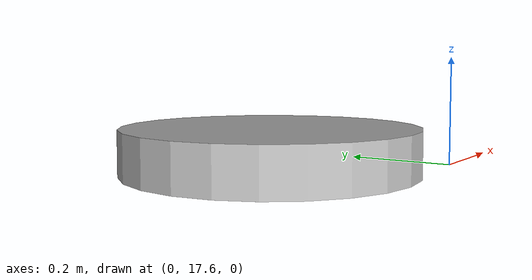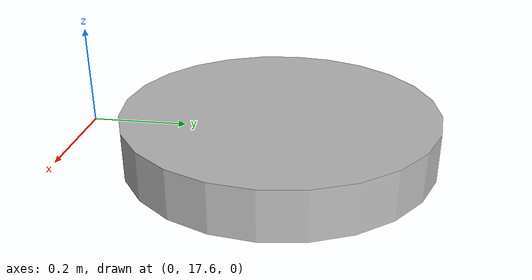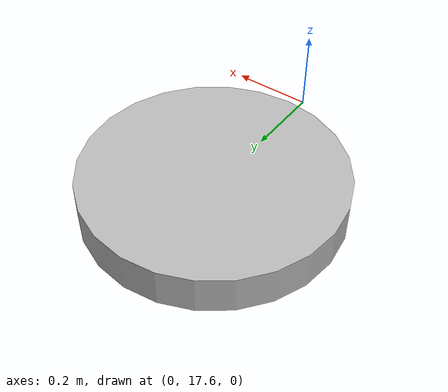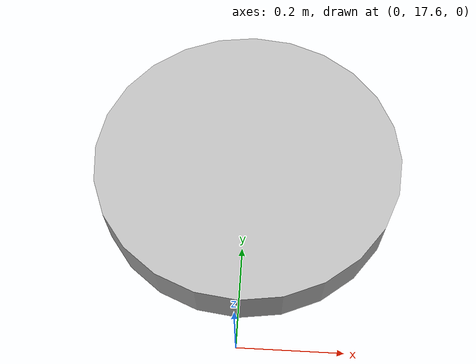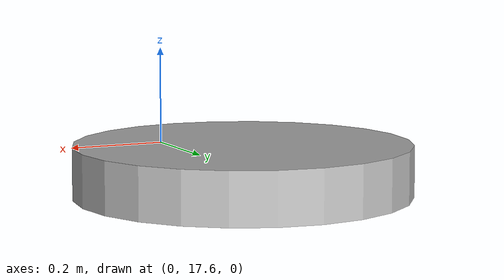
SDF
<?xml version="1.0"?>
<sdf version="1.6">
  <model name="red_bound_0">
    <static>false</static>
    <link name="link">
      <pose>0 18 0 0 0 0</pose>
      <collision name="collision">
        <geometry>
          <cylinder>
            <radius>0.325</radius>
            <length>0.1</length>
          </cylinder>
        </geometry>
        <surface>
          <contact>
            <collide_without_contact_bitmask>1</collide_without_contact_bitmask>
          </contact>
        </surface>
      </collision>
      <visual name="visual">
        <geometry>
          <cylinder>
            <radius>0.325</radius>
            <length>0.1</length>
          </cylinder>
        </geometry>
      </visual>
    </link>

    <plugin name="vrx::PolyhedraBuoyancyDrag" filename="libPolyhedraBuoyancyDrag.so">
      <fluid_density>1000</fluid_density>
      <fluid_level>0.0</fluid_level>
      <linear_drag>25.0</linear_drag>
      <angular_drag>2.0</angular_drag>
      <buoyancy name="collision_outer">
        <link_name>link</link_name>
        <pose>0 0 -0.6 0 0 0</pose>
        <geometry>
          <cylinder>
            <radius>0.325</radius>
            <length>0.1</length>
          </cylinder>
        </geometry>
      </buoyancy>
      <wavefield>
        <size>1000 1000</size>
        <cell_count>50 50</cell_count>
        <wave>
          <model>PMS</model>
          <period>5.0</period>
          <number>3</number>
          <scale>1.1</scale>
          <gain>0.3</gain>
          <direction>1 0</direction>
          <angle>0.4</angle>
          <tau>2.0</tau>
          <amplitude>0.0</amplitude>
          <steepness>0.0</steepness>
        </wave>
      </wavefield>
    </plugin>
  </model>
</sdf>
